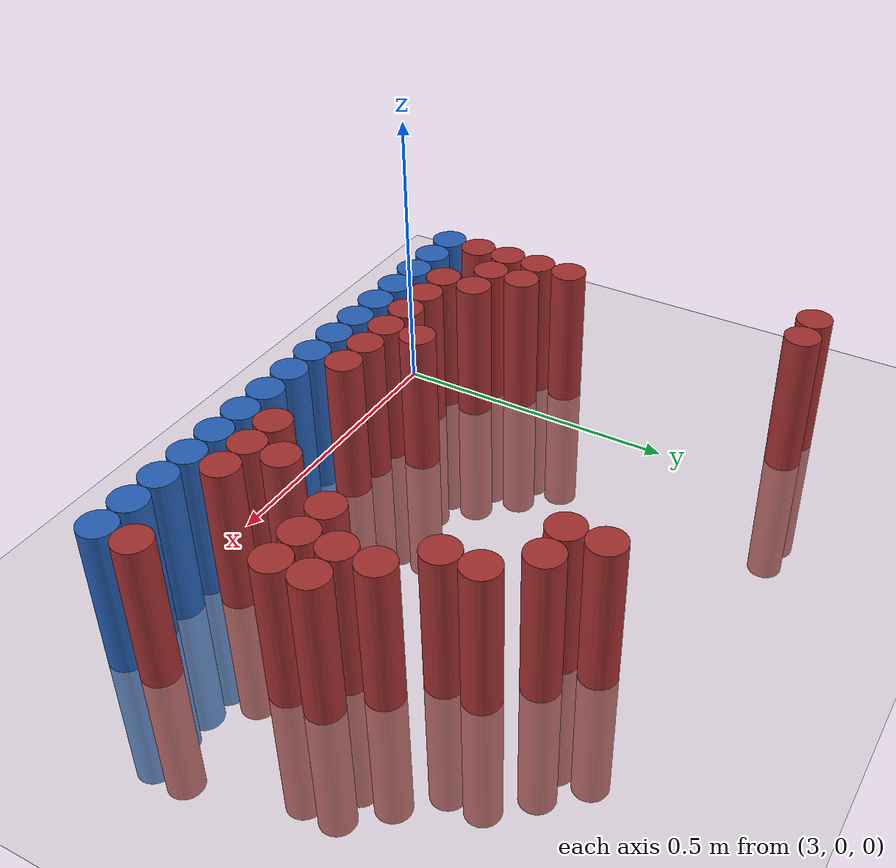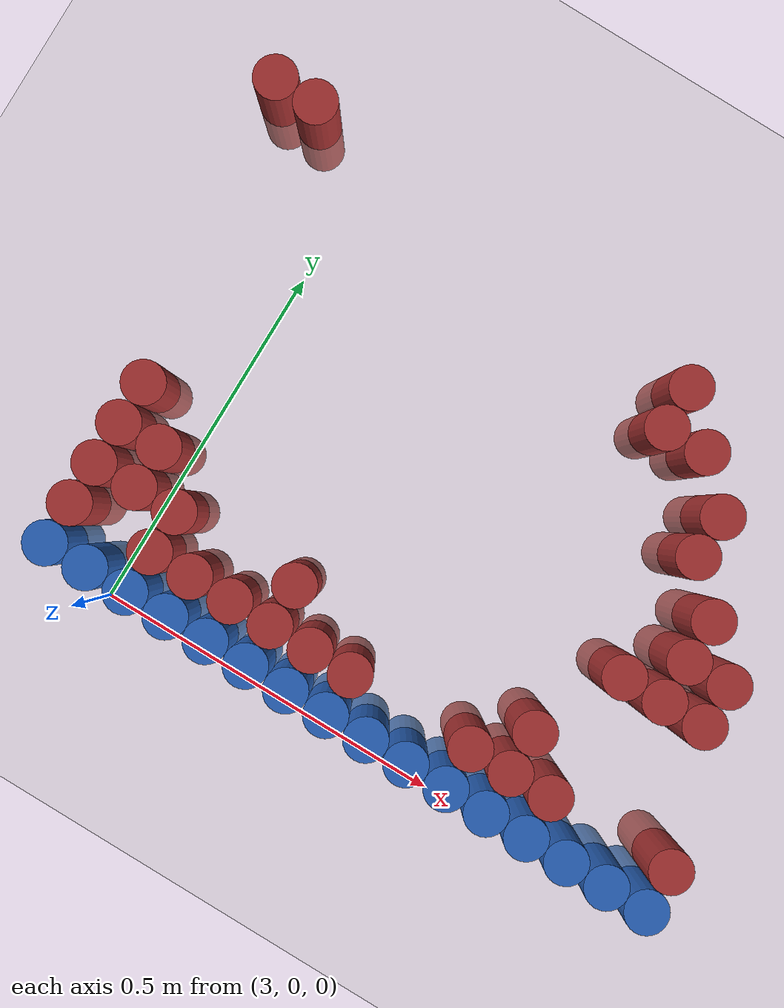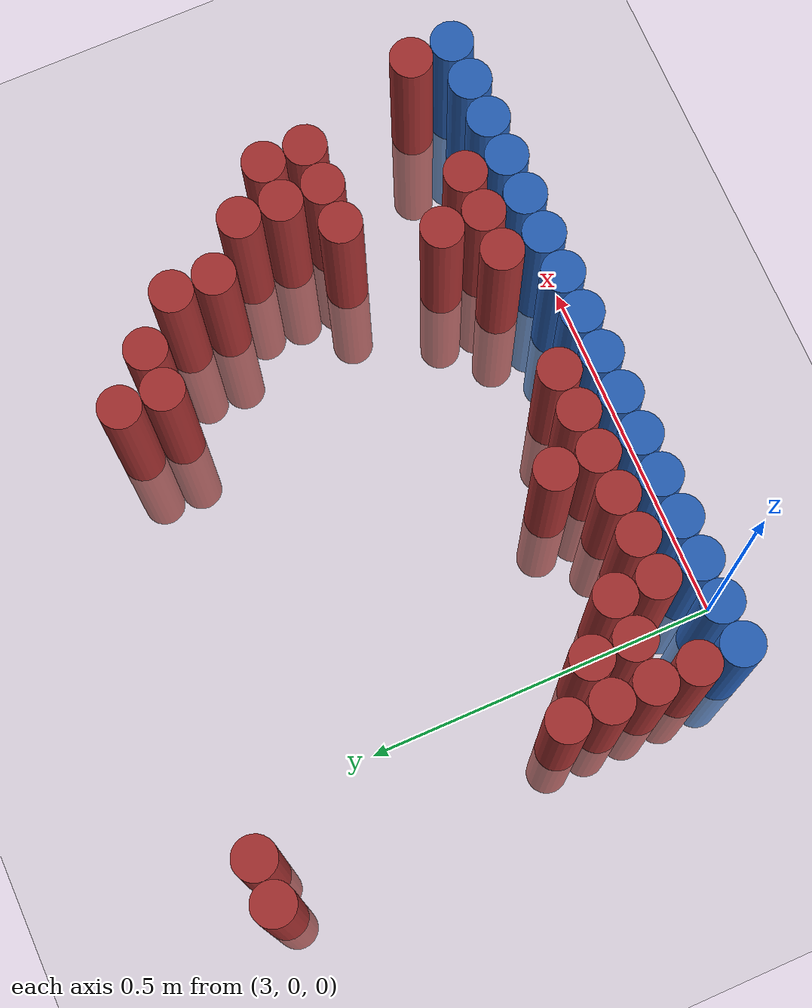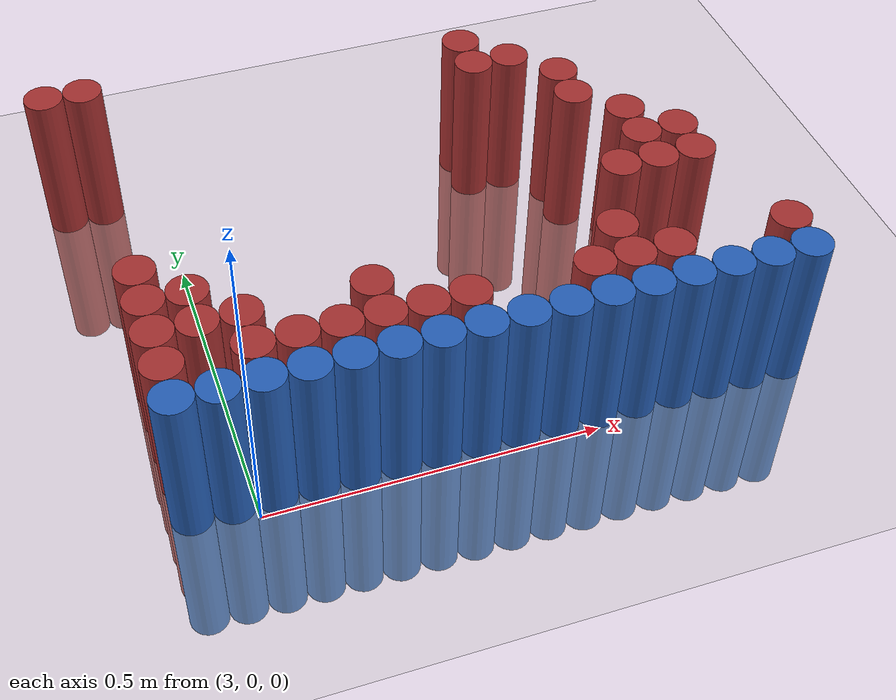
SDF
<sdf version="1.6">
 <world name="default">
  <model name="ground_plane">
   <static>1</static>
   <link name="link">
    <collision name="collision">
     <geometry><plane><normal>0 0 1</normal><size>100 100</size></plane></geometry>
     <surface><friction><ode><mu>100</mu><mu2>50</mu2></ode></friction></surface>
    </collision>
    <visual name="visual">
     <cast_shadows>0</cast_shadows>
     <geometry><plane><normal>0 0 1</normal><size>100 100</size></plane></geometry>
     <material>
      <script><uri>file://media/materials/scripts/gazebo.material</uri><name>Gazebo/Grey</name></script>
     </material>
    </visual>
   </link>
  </model>
  <model name="unit_cylinder_214">
   <static>1</static>
   <pose>2.850000 0.690000 0.000000 0.000000 0.000000 0.000000</pose>
   <link name="link">
    <inertial>
     <mass>1</mass>
     <inertia><ixx>0.145833</ixx><ixy>0</ixy><ixz>0</ixz><iyy>0.145833</iyy><iyz>0</iyz><izz>0.125</izz></inertia>
    </inertial>
    <collision name="collision">
     <geometry><cylinder><radius>0.030000</radius><length>0.5</length></cylinder></geometry>
    </collision>
    <visual name="visual">
     <geometry><cylinder><radius>0.030000</radius><length>0.5</length></cylinder></geometry>
     <material>
      <ambient>0.648000 0.192000 0.192000 1</ambient>
      <diffuse>0.648000 0.192000 0.192000 1</diffuse>
     </material>
     <material>
      <script><name>Gazebo/Grey</name><uri>file://media/materials/scripts/gazebo.material</uri></script>
     </material>
    </visual>
   </link>
  </model>
  <model name="unit_cylinder_215">
   <static>1</static>
   <pose>2.910000 0.690000 0.000000 0.000000 0.000000 0.000000</pose>
   <link name="link">
    <inertial>
     <mass>1</mass>
     <inertia><ixx>0.145833</ixx><ixy>0</ixy><ixz>0</ixz><iyy>0.145833</iyy><iyz>0</iyz><izz>0.125</izz></inertia>
    </inertial>
    <collision name="collision">
     <geometry><cylinder><radius>0.030000</radius><length>0.5</length></cylinder></geometry>
    </collision>
    <visual name="visual">
     <geometry><cylinder><radius>0.030000</radius><length>0.5</length></cylinder></geometry>
     <material>
      <ambient>0.648000 0.192000 0.192000 1</ambient>
      <diffuse>0.648000 0.192000 0.192000 1</diffuse>
     </material>
     <material>
      <script><name>Gazebo/Grey</name><uri>file://media/materials/scripts/gazebo.material</uri></script>
     </material>
    </visual>
   </link>
  </model>
  <model name="unit_cylinder_221">
   <static>1</static>
   <pose>3.510000 0.630000 0.000000 0.000000 0.000000 0.000000</pose>
   <link name="link">
    <inertial>
     <mass>1</mass>
     <inertia><ixx>0.145833</ixx><ixy>0</ixy><ixz>0</ixz><iyy>0.145833</iyy><iyz>0</iyz><izz>0.125</izz></inertia>
    </inertial>
    <collision name="collision">
     <geometry><cylinder><radius>0.030000</radius><length>0.5</length></cylinder></geometry>
    </collision>
    <visual name="visual">
     <geometry><cylinder><radius>0.030000</radius><length>0.5</length></cylinder></geometry>
     <material>
      <ambient>0.648000 0.192000 0.192000 1</ambient>
      <diffuse>0.648000 0.192000 0.192000 1</diffuse>
     </material>
     <material>
      <script><name>Gazebo/Grey</name><uri>file://media/materials/scripts/gazebo.material</uri></script>
     </material>
    </visual>
   </link>
  </model>
  <model name="unit_cylinder_226">
   <static>1</static>
   <pose>3.510000 0.570000 0.000000 0.000000 0.000000 0.000000</pose>
   <link name="link">
    <inertial>
     <mass>1</mass>
     <inertia><ixx>0.145833</ixx><ixy>0</ixy><ixz>0</ixz><iyy>0.145833</iyy><iyz>0</iyz><izz>0.125</izz></inertia>
    </inertial>
    <collision name="collision">
     <geometry><cylinder><radius>0.030000</radius><length>0.5</length></cylinder></geometry>
    </collision>
    <visual name="visual">
     <geometry><cylinder><radius>0.030000</radius><length>0.5</length></cylinder></geometry>
     <material>
      <ambient>0.648000 0.192000 0.192000 1</ambient>
      <diffuse>0.648000 0.192000 0.192000 1</diffuse>
     </material>
     <material>
      <script><name>Gazebo/Grey</name><uri>file://media/materials/scripts/gazebo.material</uri></script>
     </material>
    </visual>
   </link>
  </model>
  <model name="unit_cylinder_227">
   <static>1</static>
   <pose>3.570000 0.570000 0.000000 0.000000 0.000000 0.000000</pose>
   <link name="link">
    <inertial>
     <mass>1</mass>
     <inertia><ixx>0.145833</ixx><ixy>0</ixy><ixz>0</ixz><iyy>0.145833</iyy><iyz>0</iyz><izz>0.125</izz></inertia>
    </inertial>
    <collision name="collision">
     <geometry><cylinder><radius>0.030000</radius><length>0.5</length></cylinder></geometry>
    </collision>
    <visual name="visual">
     <geometry><cylinder><radius>0.030000</radius><length>0.5</length></cylinder></geometry>
     <material>
      <ambient>0.648000 0.192000 0.192000 1</ambient>
      <diffuse>0.648000 0.192000 0.192000 1</diffuse>
     </material>
     <material>
      <script><name>Gazebo/Grey</name><uri>file://media/materials/scripts/gazebo.material</uri></script>
     </material>
    </visual>
   </link>
  </model>
  <model name="unit_cylinder_232">
   <static>1</static>
   <pose>3.630000 0.510000 0.000000 0.000000 0.000000 0.000000</pose>
   <link name="link">
    <inertial>
     <mass>1</mass>
     <inertia><ixx>0.145833</ixx><ixy>0</ixy><ixz>0</ixz><iyy>0.145833</iyy><iyz>0</iyz><izz>0.125</izz></inertia>
    </inertial>
    <collision name="collision">
     <geometry><cylinder><radius>0.030000</radius><length>0.5</length></cylinder></geometry>
    </collision>
    <visual name="visual">
     <geometry><cylinder><radius>0.030000</radius><length>0.5</length></cylinder></geometry>
     <material>
      <ambient>0.648000 0.192000 0.192000 1</ambient>
      <diffuse>0.648000 0.192000 0.192000 1</diffuse>
     </material>
     <material>
      <script><name>Gazebo/Grey</name><uri>file://media/materials/scripts/gazebo.material</uri></script>
     </material>
    </visual>
   </link>
  </model>
  <model name="unit_cylinder_241">
   <static>1</static>
   <pose>3.630000 0.450000 0.000000 0.000000 0.000000 0.000000</pose>
   <link name="link">
    <inertial>
     <mass>1</mass>
     <inertia><ixx>0.145833</ixx><ixy>0</ixy><ixz>0</ixz><iyy>0.145833</iyy><iyz>0</iyz><izz>0.125</izz></inertia>
    </inertial>
    <collision name="collision">
     <geometry><cylinder><radius>0.030000</radius><length>0.5</length></cylinder></geometry>
    </collision>
    <visual name="visual">
     <geometry><cylinder><radius>0.030000</radius><length>0.5</length></cylinder></geometry>
     <material>
      <ambient>0.648000 0.192000 0.192000 1</ambient>
      <diffuse>0.648000 0.192000 0.192000 1</diffuse>
     </material>
     <material>
      <script><name>Gazebo/Grey</name><uri>file://media/materials/scripts/gazebo.material</uri></script>
     </material>
    </visual>
   </link>
  </model>
  <model name="unit_cylinder_247">
   <static>1</static>
   <pose>3.690000 0.390000 0.000000 0.000000 0.000000 0.000000</pose>
   <link name="link">
    <inertial>
     <mass>1</mass>
     <inertia><ixx>0.145833</ixx><ixy>0</ixy><ixz>0</ixz><iyy>0.145833</iyy><iyz>0</iyz><izz>0.125</izz></inertia>
    </inertial>
    <collision name="collision">
     <geometry><cylinder><radius>0.030000</radius><length>0.5</length></cylinder></geometry>
    </collision>
    <visual name="visual">
     <geometry><cylinder><radius>0.030000</radius><length>0.5</length></cylinder></geometry>
     <material>
      <ambient>0.648000 0.192000 0.192000 1</ambient>
      <diffuse>0.648000 0.192000 0.192000 1</diffuse>
     </material>
     <material>
      <script><name>Gazebo/Grey</name><uri>file://media/materials/scripts/gazebo.material</uri></script>
     </material>
    </visual>
   </link>
  </model>
  <model name="unit_cylinder_255">
   <static>1</static>
   <pose>3.690000 0.330000 0.000000 0.000000 0.000000 0.000000</pose>
   <link name="link">
    <inertial>
     <mass>1</mass>
     <inertia><ixx>0.145833</ixx><ixy>0</ixy><ixz>0</ixz><iyy>0.145833</iyy><iyz>0</iyz><izz>0.125</izz></inertia>
    </inertial>
    <collision name="collision">
     <geometry><cylinder><radius>0.030000</radius><length>0.5</length></cylinder></geometry>
    </collision>
    <visual name="visual">
     <geometry><cylinder><radius>0.030000</radius><length>0.5</length></cylinder></geometry>
     <material>
      <ambient>0.648000 0.192000 0.192000 1</ambient>
      <diffuse>0.648000 0.192000 0.192000 1</diffuse>
     </material>
     <material>
      <script><name>Gazebo/Grey</name><uri>file://media/materials/scripts/gazebo.material</uri></script>
     </material>
    </visual>
   </link>
  </model>
  <model name="unit_cylinder_256">
   <static>1</static>
   <pose>3.750000 0.330000 0.000000 0.000000 0.000000 0.000000</pose>
   <link name="link">
    <inertial>
     <mass>1</mass>
     <inertia><ixx>0.145833</ixx><ixy>0</ixy><ixz>0</ixz><iyy>0.145833</iyy><iyz>0</iyz><izz>0.125</izz></inertia>
    </inertial>
    <collision name="collision">
     <geometry><cylinder><radius>0.030000</radius><length>0.5</length></cylinder></geometry>
    </collision>
    <visual name="visual">
     <geometry><cylinder><radius>0.030000</radius><length>0.5</length></cylinder></geometry>
     <material>
      <ambient>0.648000 0.192000 0.192000 1</ambient>
      <diffuse>0.648000 0.192000 0.192000 1</diffuse>
     </material>
     <material>
      <script><name>Gazebo/Grey</name><uri>file://media/materials/scripts/gazebo.material</uri></script>
     </material>
    </visual>
   </link>
  </model>
  <model name="unit_cylinder_263">
   <static>1</static>
   <pose>2.910000 0.270000 0.000000 0.000000 0.000000 0.000000</pose>
   <link name="link">
    <inertial>
     <mass>1</mass>
     <inertia><ixx>0.145833</ixx><ixy>0</ixy><ixz>0</ixz><iyy>0.145833</iyy><iyz>0</iyz><izz>0.125</izz></inertia>
    </inertial>
    <collision name="collision">
     <geometry><cylinder><radius>0.030000</radius><length>0.5</length></cylinder></geometry>
    </collision>
    <visual name="visual">
     <geometry><cylinder><radius>0.030000</radius><length>0.5</length></cylinder></geometry>
     <material>
      <ambient>0.648000 0.192000 0.192000 1</ambient>
      <diffuse>0.648000 0.192000 0.192000 1</diffuse>
     </material>
     <material>
      <script><name>Gazebo/Grey</name><uri>file://media/materials/scripts/gazebo.material</uri></script>
     </material>
    </visual>
   </link>
  </model>
  <model name="unit_cylinder_264">
   <static>1</static>
   <pose>3.630000 0.270000 0.000000 0.000000 0.000000 0.000000</pose>
   <link name="link">
    <inertial>
     <mass>1</mass>
     <inertia><ixx>0.145833</ixx><ixy>0</ixy><ixz>0</ixz><iyy>0.145833</iyy><iyz>0</iyz><izz>0.125</izz></inertia>
    </inertial>
    <collision name="collision">
     <geometry><cylinder><radius>0.030000</radius><length>0.5</length></cylinder></geometry>
    </collision>
    <visual name="visual">
     <geometry><cylinder><radius>0.030000</radius><length>0.5</length></cylinder></geometry>
     <material>
      <ambient>0.648000 0.192000 0.192000 1</ambient>
      <diffuse>0.648000 0.192000 0.192000 1</diffuse>
     </material>
     <material>
      <script><name>Gazebo/Grey</name><uri>file://media/materials/scripts/gazebo.material</uri></script>
     </material>
    </visual>
   </link>
  </model>
  <model name="unit_cylinder_265">
   <static>1</static>
   <pose>3.690000 0.270000 0.000000 0.000000 0.000000 0.000000</pose>
   <link name="link">
    <inertial>
     <mass>1</mass>
     <inertia><ixx>0.145833</ixx><ixy>0</ixy><ixz>0</ixz><iyy>0.145833</iyy><iyz>0</iyz><izz>0.125</izz></inertia>
    </inertial>
    <collision name="collision">
     <geometry><cylinder><radius>0.030000</radius><length>0.5</length></cylinder></geometry>
    </collision>
    <visual name="visual">
     <geometry><cylinder><radius>0.030000</radius><length>0.5</length></cylinder></geometry>
     <material>
      <ambient>0.648000 0.192000 0.192000 1</ambient>
      <diffuse>0.648000 0.192000 0.192000 1</diffuse>
     </material>
     <material>
      <script><name>Gazebo/Grey</name><uri>file://media/materials/scripts/gazebo.material</uri></script>
     </material>
    </visual>
   </link>
  </model>
  <model name="unit_cylinder_266">
   <static>1</static>
   <pose>3.750000 0.270000 0.000000 0.000000 0.000000 0.000000</pose>
   <link name="link">
    <inertial>
     <mass>1</mass>
     <inertia><ixx>0.145833</ixx><ixy>0</ixy><ixz>0</ixz><iyy>0.145833</iyy><iyz>0</iyz><izz>0.125</izz></inertia>
    </inertial>
    <collision name="collision">
     <geometry><cylinder><radius>0.030000</radius><length>0.5</length></cylinder></geometry>
    </collision>
    <visual name="visual">
     <geometry><cylinder><radius>0.030000</radius><length>0.5</length></cylinder></geometry>
     <material>
      <ambient>0.648000 0.192000 0.192000 1</ambient>
      <diffuse>0.648000 0.192000 0.192000 1</diffuse>
     </material>
     <material>
      <script><name>Gazebo/Grey</name><uri>file://media/materials/scripts/gazebo.material</uri></script>
     </material>
    </visual>
   </link>
  </model>
  <model name="unit_cylinder_272">
   <static>1</static>
   <pose>2.910000 0.210000 0.000000 0.000000 0.000000 0.000000</pose>
   <link name="link">
    <inertial>
     <mass>1</mass>
     <inertia><ixx>0.145833</ixx><ixy>0</ixy><ixz>0</ixz><iyy>0.145833</iyy><iyz>0</iyz><izz>0.125</izz></inertia>
    </inertial>
    <collision name="collision">
     <geometry><cylinder><radius>0.030000</radius><length>0.5</length></cylinder></geometry>
    </collision>
    <visual name="visual">
     <geometry><cylinder><radius>0.030000</radius><length>0.5</length></cylinder></geometry>
     <material>
      <ambient>0.648000 0.192000 0.192000 1</ambient>
      <diffuse>0.648000 0.192000 0.192000 1</diffuse>
     </material>
     <material>
      <script><name>Gazebo/Grey</name><uri>file://media/materials/scripts/gazebo.material</uri></script>
     </material>
    </visual>
   </link>
  </model>
  <model name="unit_cylinder_273">
   <static>1</static>
   <pose>2.970000 0.210000 0.000000 0.000000 0.000000 0.000000</pose>
   <link name="link">
    <inertial>
     <mass>1</mass>
     <inertia><ixx>0.145833</ixx><ixy>0</ixy><ixz>0</ixz><iyy>0.145833</iyy><iyz>0</iyz><izz>0.125</izz></inertia>
    </inertial>
    <collision name="collision">
     <geometry><cylinder><radius>0.030000</radius><length>0.5</length></cylinder></geometry>
    </collision>
    <visual name="visual">
     <geometry><cylinder><radius>0.030000</radius><length>0.5</length></cylinder></geometry>
     <material>
      <ambient>0.648000 0.192000 0.192000 1</ambient>
      <diffuse>0.648000 0.192000 0.192000 1</diffuse>
     </material>
     <material>
      <script><name>Gazebo/Grey</name><uri>file://media/materials/scripts/gazebo.material</uri></script>
     </material>
    </visual>
   </link>
  </model>
  <model name="unit_cylinder_278">
   <static>1</static>
   <pose>2.910000 0.150000 0.000000 0.000000 0.000000 0.000000</pose>
   <link name="link">
    <inertial>
     <mass>1</mass>
     <inertia><ixx>0.145833</ixx><ixy>0</ixy><ixz>0</ixz><iyy>0.145833</iyy><iyz>0</iyz><izz>0.125</izz></inertia>
    </inertial>
    <collision name="collision">
     <geometry><cylinder><radius>0.030000</radius><length>0.5</length></cylinder></geometry>
    </collision>
    <visual name="visual">
     <geometry><cylinder><radius>0.030000</radius><length>0.5</length></cylinder></geometry>
     <material>
      <ambient>0.648000 0.192000 0.192000 1</ambient>
      <diffuse>0.648000 0.192000 0.192000 1</diffuse>
     </material>
     <material>
      <script><name>Gazebo/Grey</name><uri>file://media/materials/scripts/gazebo.material</uri></script>
     </material>
    </visual>
   </link>
  </model>
  <model name="unit_cylinder_279">
   <static>1</static>
   <pose>2.970000 0.150000 0.000000 0.000000 0.000000 0.000000</pose>
   <link name="link">
    <inertial>
     <mass>1</mass>
     <inertia><ixx>0.145833</ixx><ixy>0</ixy><ixz>0</ixz><iyy>0.145833</iyy><iyz>0</iyz><izz>0.125</izz></inertia>
    </inertial>
    <collision name="collision">
     <geometry><cylinder><radius>0.030000</radius><length>0.5</length></cylinder></geometry>
    </collision>
    <visual name="visual">
     <geometry><cylinder><radius>0.030000</radius><length>0.5</length></cylinder></geometry>
     <material>
      <ambient>0.648000 0.192000 0.192000 1</ambient>
      <diffuse>0.648000 0.192000 0.192000 1</diffuse>
     </material>
     <material>
      <script><name>Gazebo/Grey</name><uri>file://media/materials/scripts/gazebo.material</uri></script>
     </material>
    </visual>
   </link>
  </model>
  <model name="unit_cylinder_280">
   <static>1</static>
   <pose>3.030000 0.150000 0.000000 0.000000 0.000000 0.000000</pose>
   <link name="link">
    <inertial>
     <mass>1</mass>
     <inertia><ixx>0.145833</ixx><ixy>0</ixy><ixz>0</ixz><iyy>0.145833</iyy><iyz>0</iyz><izz>0.125</izz></inertia>
    </inertial>
    <collision name="collision">
     <geometry><cylinder><radius>0.030000</radius><length>0.5</length></cylinder></geometry>
    </collision>
    <visual name="visual">
     <geometry><cylinder><radius>0.030000</radius><length>0.5</length></cylinder></geometry>
     <material>
      <ambient>0.648000 0.192000 0.192000 1</ambient>
      <diffuse>0.648000 0.192000 0.192000 1</diffuse>
     </material>
     <material>
      <script><name>Gazebo/Grey</name><uri>file://media/materials/scripts/gazebo.material</uri></script>
     </material>
    </visual>
   </link>
  </model>
  <model name="unit_cylinder_281">
   <static>1</static>
   <pose>3.210000 0.150000 0.000000 0.000000 0.000000 0.000000</pose>
   <link name="link">
    <inertial>
     <mass>1</mass>
     <inertia><ixx>0.145833</ixx><ixy>0</ixy><ixz>0</ixz><iyy>0.145833</iyy><iyz>0</iyz><izz>0.125</izz></inertia>
    </inertial>
    <collision name="collision">
     <geometry><cylinder><radius>0.030000</radius><length>0.5</length></cylinder></geometry>
    </collision>
    <visual name="visual">
     <geometry><cylinder><radius>0.030000</radius><length>0.5</length></cylinder></geometry>
     <material>
      <ambient>0.648000 0.192000 0.192000 1</ambient>
      <diffuse>0.648000 0.192000 0.192000 1</diffuse>
     </material>
     <material>
      <script><name>Gazebo/Grey</name><uri>file://media/materials/scripts/gazebo.material</uri></script>
     </material>
    </visual>
   </link>
  </model>
  <model name="unit_cylinder_282">
   <static>1</static>
   <pose>3.570000 0.150000 0.000000 0.000000 0.000000 0.000000</pose>
   <link name="link">
    <inertial>
     <mass>1</mass>
     <inertia><ixx>0.145833</ixx><ixy>0</ixy><ixz>0</ixz><iyy>0.145833</iyy><iyz>0</iyz><izz>0.125</izz></inertia>
    </inertial>
    <collision name="collision">
     <geometry><cylinder><radius>0.030000</radius><length>0.5</length></cylinder></geometry>
    </collision>
    <visual name="visual">
     <geometry><cylinder><radius>0.030000</radius><length>0.5</length></cylinder></geometry>
     <material>
      <ambient>0.648000 0.192000 0.192000 1</ambient>
      <diffuse>0.648000 0.192000 0.192000 1</diffuse>
     </material>
     <material>
      <script><name>Gazebo/Grey</name><uri>file://media/materials/scripts/gazebo.material</uri></script>
     </material>
    </visual>
   </link>
  </model>
  <model name="unit_cylinder_292">
   <static>1</static>
   <pose>2.910000 0.090000 0.000000 0.000000 0.000000 0.000000</pose>
   <link name="link">
    <inertial>
     <mass>1</mass>
     <inertia><ixx>0.145833</ixx><ixy>0</ixy><ixz>0</ixz><iyy>0.145833</iyy><iyz>0</iyz><izz>0.125</izz></inertia>
    </inertial>
    <collision name="collision">
     <geometry><cylinder><radius>0.030000</radius><length>0.5</length></cylinder></geometry>
    </collision>
    <visual name="visual">
     <geometry><cylinder><radius>0.030000</radius><length>0.5</length></cylinder></geometry>
     <material>
      <ambient>0.648000 0.192000 0.192000 1</ambient>
      <diffuse>0.648000 0.192000 0.192000 1</diffuse>
     </material>
     <material>
      <script><name>Gazebo/Grey</name><uri>file://media/materials/scripts/gazebo.material</uri></script>
     </material>
    </visual>
   </link>
  </model>
  <model name="unit_cylinder_293">
   <static>1</static>
   <pose>3.030000 0.090000 0.000000 0.000000 0.000000 0.000000</pose>
   <link name="link">
    <inertial>
     <mass>1</mass>
     <inertia><ixx>0.145833</ixx><ixy>0</ixy><ixz>0</ixz><iyy>0.145833</iyy><iyz>0</iyz><izz>0.125</izz></inertia>
    </inertial>
    <collision name="collision">
     <geometry><cylinder><radius>0.030000</radius><length>0.5</length></cylinder></geometry>
    </collision>
    <visual name="visual">
     <geometry><cylinder><radius>0.030000</radius><length>0.5</length></cylinder></geometry>
     <material>
      <ambient>0.648000 0.192000 0.192000 1</ambient>
      <diffuse>0.648000 0.192000 0.192000 1</diffuse>
     </material>
     <material>
      <script><name>Gazebo/Grey</name><uri>file://media/materials/scripts/gazebo.material</uri></script>
     </material>
    </visual>
   </link>
  </model>
  <model name="unit_cylinder_294">
   <static>1</static>
   <pose>3.090000 0.090000 0.000000 0.000000 0.000000 0.000000</pose>
   <link name="link">
    <inertial>
     <mass>1</mass>
     <inertia><ixx>0.145833</ixx><ixy>0</ixy><ixz>0</ixz><iyy>0.145833</iyy><iyz>0</iyz><izz>0.125</izz></inertia>
    </inertial>
    <collision name="collision">
     <geometry><cylinder><radius>0.030000</radius><length>0.5</length></cylinder></geometry>
    </collision>
    <visual name="visual">
     <geometry><cylinder><radius>0.030000</radius><length>0.5</length></cylinder></geometry>
     <material>
      <ambient>0.648000 0.192000 0.192000 1</ambient>
      <diffuse>0.648000 0.192000 0.192000 1</diffuse>
     </material>
     <material>
      <script><name>Gazebo/Grey</name><uri>file://media/materials/scripts/gazebo.material</uri></script>
     </material>
    </visual>
   </link>
  </model>
  <model name="unit_cylinder_295">
   <static>1</static>
   <pose>3.150000 0.090000 0.000000 0.000000 0.000000 0.000000</pose>
   <link name="link">
    <inertial>
     <mass>1</mass>
     <inertia><ixx>0.145833</ixx><ixy>0</ixy><ixz>0</ixz><iyy>0.145833</iyy><iyz>0</iyz><izz>0.125</izz></inertia>
    </inertial>
    <collision name="collision">
     <geometry><cylinder><radius>0.030000</radius><length>0.5</length></cylinder></geometry>
    </collision>
    <visual name="visual">
     <geometry><cylinder><radius>0.030000</radius><length>0.5</length></cylinder></geometry>
     <material>
      <ambient>0.648000 0.192000 0.192000 1</ambient>
      <diffuse>0.648000 0.192000 0.192000 1</diffuse>
     </material>
     <material>
      <script><name>Gazebo/Grey</name><uri>file://media/materials/scripts/gazebo.material</uri></script>
     </material>
    </visual>
   </link>
  </model>
  <model name="unit_cylinder_296">
   <static>1</static>
   <pose>3.210000 0.090000 0.000000 0.000000 0.000000 0.000000</pose>
   <link name="link">
    <inertial>
     <mass>1</mass>
     <inertia><ixx>0.145833</ixx><ixy>0</ixy><ixz>0</ixz><iyy>0.145833</iyy><iyz>0</iyz><izz>0.125</izz></inertia>
    </inertial>
    <collision name="collision">
     <geometry><cylinder><radius>0.030000</radius><length>0.5</length></cylinder></geometry>
    </collision>
    <visual name="visual">
     <geometry><cylinder><radius>0.030000</radius><length>0.5</length></cylinder></geometry>
     <material>
      <ambient>0.648000 0.192000 0.192000 1</ambient>
      <diffuse>0.648000 0.192000 0.192000 1</diffuse>
     </material>
     <material>
      <script><name>Gazebo/Grey</name><uri>file://media/materials/scripts/gazebo.material</uri></script>
     </material>
    </visual>
   </link>
  </model>
  <model name="unit_cylinder_297">
   <static>1</static>
   <pose>3.270000 0.090000 0.000000 0.000000 0.000000 0.000000</pose>
   <link name="link">
    <inertial>
     <mass>1</mass>
     <inertia><ixx>0.145833</ixx><ixy>0</ixy><ixz>0</ixz><iyy>0.145833</iyy><iyz>0</iyz><izz>0.125</izz></inertia>
    </inertial>
    <collision name="collision">
     <geometry><cylinder><radius>0.030000</radius><length>0.5</length></cylinder></geometry>
    </collision>
    <visual name="visual">
     <geometry><cylinder><radius>0.030000</radius><length>0.5</length></cylinder></geometry>
     <material>
      <ambient>0.648000 0.192000 0.192000 1</ambient>
      <diffuse>0.648000 0.192000 0.192000 1</diffuse>
     </material>
     <material>
      <script><name>Gazebo/Grey</name><uri>file://media/materials/scripts/gazebo.material</uri></script>
     </material>
    </visual>
   </link>
  </model>
  <model name="unit_cylinder_298">
   <static>1</static>
   <pose>3.330000 0.090000 0.000000 0.000000 0.000000 0.000000</pose>
   <link name="link">
    <inertial>
     <mass>1</mass>
     <inertia><ixx>0.145833</ixx><ixy>0</ixy><ixz>0</ixz><iyy>0.145833</iyy><iyz>0</iyz><izz>0.125</izz></inertia>
    </inertial>
    <collision name="collision">
     <geometry><cylinder><radius>0.030000</radius><length>0.5</length></cylinder></geometry>
    </collision>
    <visual name="visual">
     <geometry><cylinder><radius>0.030000</radius><length>0.5</length></cylinder></geometry>
     <material>
      <ambient>0.648000 0.192000 0.192000 1</ambient>
      <diffuse>0.648000 0.192000 0.192000 1</diffuse>
     </material>
     <material>
      <script><name>Gazebo/Grey</name><uri>file://media/materials/scripts/gazebo.material</uri></script>
     </material>
    </visual>
   </link>
  </model>
  <model name="unit_cylinder_299">
   <static>1</static>
   <pose>3.510000 0.090000 0.000000 0.000000 0.000000 0.000000</pose>
   <link name="link">
    <inertial>
     <mass>1</mass>
     <inertia><ixx>0.145833</ixx><ixy>0</ixy><ixz>0</ixz><iyy>0.145833</iyy><iyz>0</iyz><izz>0.125</izz></inertia>
    </inertial>
    <collision name="collision">
     <geometry><cylinder><radius>0.030000</radius><length>0.5</length></cylinder></geometry>
    </collision>
    <visual name="visual">
     <geometry><cylinder><radius>0.030000</radius><length>0.5</length></cylinder></geometry>
     <material>
      <ambient>0.648000 0.192000 0.192000 1</ambient>
      <diffuse>0.648000 0.192000 0.192000 1</diffuse>
     </material>
     <material>
      <script><name>Gazebo/Grey</name><uri>file://media/materials/scripts/gazebo.material</uri></script>
     </material>
    </visual>
   </link>
  </model>
  <model name="unit_cylinder_300">
   <static>1</static>
   <pose>3.570000 0.090000 0.000000 0.000000 0.000000 0.000000</pose>
   <link name="link">
    <inertial>
     <mass>1</mass>
     <inertia><ixx>0.145833</ixx><ixy>0</ixy><ixz>0</ixz><iyy>0.145833</iyy><iyz>0</iyz><izz>0.125</izz></inertia>
    </inertial>
    <collision name="collision">
     <geometry><cylinder><radius>0.030000</radius><length>0.5</length></cylinder></geometry>
    </collision>
    <visual name="visual">
     <geometry><cylinder><radius>0.030000</radius><length>0.5</length></cylinder></geometry>
     <material>
      <ambient>0.648000 0.192000 0.192000 1</ambient>
      <diffuse>0.648000 0.192000 0.192000 1</diffuse>
     </material>
     <material>
      <script><name>Gazebo/Grey</name><uri>file://media/materials/scripts/gazebo.material</uri></script>
     </material>
    </visual>
   </link>
  </model>
  <model name="unit_cylinder_301">
   <static>1</static>
   <pose>3.630000 0.090000 0.000000 0.000000 0.000000 0.000000</pose>
   <link name="link">
    <inertial>
     <mass>1</mass>
     <inertia><ixx>0.145833</ixx><ixy>0</ixy><ixz>0</ixz><iyy>0.145833</iyy><iyz>0</iyz><izz>0.125</izz></inertia>
    </inertial>
    <collision name="collision">
     <geometry><cylinder><radius>0.030000</radius><length>0.5</length></cylinder></geometry>
    </collision>
    <visual name="visual">
     <geometry><cylinder><radius>0.030000</radius><length>0.5</length></cylinder></geometry>
     <material>
      <ambient>0.648000 0.192000 0.192000 1</ambient>
      <diffuse>0.648000 0.192000 0.192000 1</diffuse>
     </material>
     <material>
      <script><name>Gazebo/Grey</name><uri>file://media/materials/scripts/gazebo.material</uri></script>
     </material>
    </visual>
   </link>
  </model>
  <model name="unit_cylinder_302">
   <static>1</static>
   <pose>3.810000 0.090000 0.000000 0.000000 0.000000 0.000000</pose>
   <link name="link">
    <inertial>
     <mass>1</mass>
     <inertia><ixx>0.145833</ixx><ixy>0</ixy><ixz>0</ixz><iyy>0.145833</iyy><iyz>0</iyz><izz>0.125</izz></inertia>
    </inertial>
    <collision name="collision">
     <geometry><cylinder><radius>0.030000</radius><length>0.5</length></cylinder></geometry>
    </collision>
    <visual name="visual">
     <geometry><cylinder><radius>0.030000</radius><length>0.5</length></cylinder></geometry>
     <material>
      <ambient>0.648000 0.192000 0.192000 1</ambient>
      <diffuse>0.648000 0.192000 0.192000 1</diffuse>
     </material>
     <material>
      <script><name>Gazebo/Grey</name><uri>file://media/materials/scripts/gazebo.material</uri></script>
     </material>
    </visual>
   </link>
  </model>
  <model name="unit_cylinder_317">
   <static>1</static>
   <pose>2.910000 0.030000 0.000000 0.000000 0.000000 0.000000</pose>
   <link name="link">
    <inertial>
     <mass>1</mass>
     <inertia><ixx>0.145833</ixx><ixy>0</ixy><ixz>0</ixz><iyy>0.145833</iyy><iyz>0</iyz><izz>0.125</izz></inertia>
    </inertial>
    <collision name="collision">
     <geometry><cylinder><radius>0.030000</radius><length>0.5</length></cylinder></geometry>
    </collision>
    <visual name="visual">
     <geometry><cylinder><radius>0.030000</radius><length>0.5</length></cylinder></geometry>
     <material>
      <ambient>0.152000 0.379000 0.720000 1</ambient>
      <diffuse>0.152000 0.379000 0.720000 1</diffuse>
     </material>
     <material>
      <script><name>Gazebo/Grey</name><uri>file://media/materials/scripts/gazebo.material</uri></script>
     </material>
    </visual>
   </link>
  </model>
  <model name="unit_cylinder_318">
   <static>1</static>
   <pose>2.970000 0.030000 0.000000 0.000000 0.000000 0.000000</pose>
   <link name="link">
    <inertial>
     <mass>1</mass>
     <inertia><ixx>0.145833</ixx><ixy>0</ixy><ixz>0</ixz><iyy>0.145833</iyy><iyz>0</iyz><izz>0.125</izz></inertia>
    </inertial>
    <collision name="collision">
     <geometry><cylinder><radius>0.030000</radius><length>0.5</length></cylinder></geometry>
    </collision>
    <visual name="visual">
     <geometry><cylinder><radius>0.030000</radius><length>0.5</length></cylinder></geometry>
     <material>
      <ambient>0.152000 0.379000 0.720000 1</ambient>
      <diffuse>0.152000 0.379000 0.720000 1</diffuse>
     </material>
     <material>
      <script><name>Gazebo/Grey</name><uri>file://media/materials/scripts/gazebo.material</uri></script>
     </material>
    </visual>
   </link>
  </model>
  <model name="unit_cylinder_319">
   <static>1</static>
   <pose>3.030000 0.030000 0.000000 0.000000 0.000000 0.000000</pose>
   <link name="link">
    <inertial>
     <mass>1</mass>
     <inertia><ixx>0.145833</ixx><ixy>0</ixy><ixz>0</ixz><iyy>0.145833</iyy><iyz>0</iyz><izz>0.125</izz></inertia>
    </inertial>
    <collision name="collision">
     <geometry><cylinder><radius>0.030000</radius><length>0.5</length></cylinder></geometry>
    </collision>
    <visual name="visual">
     <geometry><cylinder><radius>0.030000</radius><length>0.5</length></cylinder></geometry>
     <material>
      <ambient>0.152000 0.379000 0.720000 1</ambient>
      <diffuse>0.152000 0.379000 0.720000 1</diffuse>
     </material>
     <material>
      <script><name>Gazebo/Grey</name><uri>file://media/materials/scripts/gazebo.material</uri></script>
     </material>
    </visual>
   </link>
  </model>
  <model name="unit_cylinder_320">
   <static>1</static>
   <pose>3.090000 0.030000 0.000000 0.000000 0.000000 0.000000</pose>
   <link name="link">
    <inertial>
     <mass>1</mass>
     <inertia><ixx>0.145833</ixx><ixy>0</ixy><ixz>0</ixz><iyy>0.145833</iyy><iyz>0</iyz><izz>0.125</izz></inertia>
    </inertial>
    <collision name="collision">
     <geometry><cylinder><radius>0.030000</radius><length>0.5</length></cylinder></geometry>
    </collision>
    <visual name="visual">
     <geometry><cylinder><radius>0.030000</radius><length>0.5</length></cylinder></geometry>
     <material>
      <ambient>0.152000 0.379000 0.720000 1</ambient>
      <diffuse>0.152000 0.379000 0.720000 1</diffuse>
     </material>
     <material>
      <script><name>Gazebo/Grey</name><uri>file://media/materials/scripts/gazebo.material</uri></script>
     </material>
    </visual>
   </link>
  </model>
  <model name="unit_cylinder_321">
   <static>1</static>
   <pose>3.150000 0.030000 0.000000 0.000000 0.000000 0.000000</pose>
   <link name="link">
    <inertial>
     <mass>1</mass>
     <inertia><ixx>0.145833</ixx><ixy>0</ixy><ixz>0</ixz><iyy>0.145833</iyy><iyz>0</iyz><izz>0.125</izz></inertia>
    </inertial>
    <collision name="collision">
     <geometry><cylinder><radius>0.030000</radius><length>0.5</length></cylinder></geometry>
    </collision>
    <visual name="visual">
     <geometry><cylinder><radius>0.030000</radius><length>0.5</length></cylinder></geometry>
     <material>
      <ambient>0.152000 0.379000 0.720000 1</ambient>
      <diffuse>0.152000 0.379000 0.720000 1</diffuse>
     </material>
     <material>
      <script><name>Gazebo/Grey</name><uri>file://media/materials/scripts/gazebo.material</uri></script>
     </material>
    </visual>
   </link>
  </model>
  <model name="unit_cylinder_322">
   <static>1</static>
   <pose>3.210000 0.030000 0.000000 0.000000 0.000000 0.000000</pose>
   <link name="link">
    <inertial>
     <mass>1</mass>
     <inertia><ixx>0.145833</ixx><ixy>0</ixy><ixz>0</ixz><iyy>0.145833</iyy><iyz>0</iyz><izz>0.125</izz></inertia>
    </inertial>
    <collision name="collision">
     <geometry><cylinder><radius>0.030000</radius><length>0.5</length></cylinder></geometry>
    </collision>
    <visual name="visual">
     <geometry><cylinder><radius>0.030000</radius><length>0.5</length></cylinder></geometry>
     <material>
      <ambient>0.152000 0.379000 0.720000 1</ambient>
      <diffuse>0.152000 0.379000 0.720000 1</diffuse>
     </material>
     <material>
      <script><name>Gazebo/Grey</name><uri>file://media/materials/scripts/gazebo.material</uri></script>
     </material>
    </visual>
   </link>
  </model>
  <model name="unit_cylinder_323">
   <static>1</static>
   <pose>3.270000 0.030000 0.000000 0.000000 0.000000 0.000000</pose>
   <link name="link">
    <inertial>
     <mass>1</mass>
     <inertia><ixx>0.145833</ixx><ixy>0</ixy><ixz>0</ixz><iyy>0.145833</iyy><iyz>0</iyz><izz>0.125</izz></inertia>
    </inertial>
    <collision name="collision">
     <geometry><cylinder><radius>0.030000</radius><length>0.5</length></cylinder></geometry>
    </collision>
    <visual name="visual">
     <geometry><cylinder><radius>0.030000</radius><length>0.5</length></cylinder></geometry>
     <material>
      <ambient>0.152000 0.379000 0.720000 1</ambient>
      <diffuse>0.152000 0.379000 0.720000 1</diffuse>
     </material>
     <material>
      <script><name>Gazebo/Grey</name><uri>file://media/materials/scripts/gazebo.material</uri></script>
     </material>
    </visual>
   </link>
  </model>
  <model name="unit_cylinder_324">
   <static>1</static>
   <pose>3.330000 0.030000 0.000000 0.000000 0.000000 0.000000</pose>
   <link name="link">
    <inertial>
     <mass>1</mass>
     <inertia><ixx>0.145833</ixx><ixy>0</ixy><ixz>0</ixz><iyy>0.145833</iyy><iyz>0</iyz><izz>0.125</izz></inertia>
    </inertial>
    <collision name="collision">
     <geometry><cylinder><radius>0.030000</radius><length>0.5</length></cylinder></geometry>
    </collision>
    <visual name="visual">
     <geometry><cylinder><radius>0.030000</radius><length>0.5</length></cylinder></geometry>
     <material>
      <ambient>0.152000 0.379000 0.720000 1</ambient>
      <diffuse>0.152000 0.379000 0.720000 1</diffuse>
     </material>
     <material>
      <script><name>Gazebo/Grey</name><uri>file://media/materials/scripts/gazebo.material</uri></script>
     </material>
    </visual>
   </link>
  </model>
  <model name="unit_cylinder_325">
   <static>1</static>
   <pose>3.390000 0.030000 0.000000 0.000000 0.000000 0.000000</pose>
   <link name="link">
    <inertial>
     <mass>1</mass>
     <inertia><ixx>0.145833</ixx><ixy>0</ixy><ixz>0</ixz><iyy>0.145833</iyy><iyz>0</iyz><izz>0.125</izz></inertia>
    </inertial>
    <collision name="collision">
     <geometry><cylinder><radius>0.030000</radius><length>0.5</length></cylinder></geometry>
    </collision>
    <visual name="visual">
     <geometry><cylinder><radius>0.030000</radius><length>0.5</length></cylinder></geometry>
     <material>
      <ambient>0.152000 0.379000 0.720000 1</ambient>
      <diffuse>0.152000 0.379000 0.720000 1</diffuse>
     </material>
     <material>
      <script><name>Gazebo/Grey</name><uri>file://media/materials/scripts/gazebo.material</uri></script>
     </material>
    </visual>
   </link>
  </model>
  <model name="unit_cylinder_326">
   <static>1</static>
   <pose>3.450000 0.030000 0.000000 0.000000 0.000000 0.000000</pose>
   <link name="link">
    <inertial>
     <mass>1</mass>
     <inertia><ixx>0.145833</ixx><ixy>0</ixy><ixz>0</ixz><iyy>0.145833</iyy><iyz>0</iyz><izz>0.125</izz></inertia>
    </inertial>
    <collision name="collision">
     <geometry><cylinder><radius>0.030000</radius><length>0.5</length></cylinder></geometry>
    </collision>
    <visual name="visual">
     <geometry><cylinder><radius>0.030000</radius><length>0.5</length></cylinder></geometry>
     <material>
      <ambient>0.152000 0.379000 0.720000 1</ambient>
      <diffuse>0.152000 0.379000 0.720000 1</diffuse>
     </material>
     <material>
      <script><name>Gazebo/Grey</name><uri>file://media/materials/scripts/gazebo.material</uri></script>
     </material>
    </visual>
   </link>
  </model>
  <model name="unit_cylinder_327">
   <static>1</static>
   <pose>3.510000 0.030000 0.000000 0.000000 0.000000 0.000000</pose>
   <link name="link">
    <inertial>
     <mass>1</mass>
     <inertia><ixx>0.145833</ixx><ixy>0</ixy><ixz>0</ixz><iyy>0.145833</iyy><iyz>0</iyz><izz>0.125</izz></inertia>
    </inertial>
    <collision name="collision">
     <geometry><cylinder><radius>0.030000</radius><length>0.5</length></cylinder></geometry>
    </collision>
    <visual name="visual">
     <geometry><cylinder><radius>0.030000</radius><length>0.5</length></cylinder></geometry>
     <material>
      <ambient>0.152000 0.379000 0.720000 1</ambient>
      <diffuse>0.152000 0.379000 0.720000 1</diffuse>
     </material>
     <material>
      <script><name>Gazebo/Grey</name><uri>file://media/materials/scripts/gazebo.material</uri></script>
     </material>
    </visual>
   </link>
  </model>
  <model name="unit_cylinder_328">
   <static>1</static>
   <pose>3.570000 0.030000 0.000000 0.000000 0.000000 0.000000</pose>
   <link name="link">
    <inertial>
     <mass>1</mass>
     <inertia><ixx>0.145833</ixx><ixy>0</ixy><ixz>0</ixz><iyy>0.145833</iyy><iyz>0</iyz><izz>0.125</izz></inertia>
    </inertial>
    <collision name="collision">
     <geometry><cylinder><radius>0.030000</radius><length>0.5</length></cylinder></geometry>
    </collision>
    <visual name="visual">
     <geometry><cylinder><radius>0.030000</radius><length>0.5</length></cylinder></geometry>
     <material>
      <ambient>0.152000 0.379000 0.720000 1</ambient>
      <diffuse>0.152000 0.379000 0.720000 1</diffuse>
     </material>
     <material>
      <script><name>Gazebo/Grey</name><uri>file://media/materials/scripts/gazebo.material</uri></script>
     </material>
    </visual>
   </link>
  </model>
  <model name="unit_cylinder_329">
   <static>1</static>
   <pose>3.630000 0.030000 0.000000 0.000000 0.000000 0.000000</pose>
   <link name="link">
    <inertial>
     <mass>1</mass>
     <inertia><ixx>0.145833</ixx><ixy>0</ixy><ixz>0</ixz><iyy>0.145833</iyy><iyz>0</iyz><izz>0.125</izz></inertia>
    </inertial>
    <collision name="collision">
     <geometry><cylinder><radius>0.030000</radius><length>0.5</length></cylinder></geometry>
    </collision>
    <visual name="visual">
     <geometry><cylinder><radius>0.030000</radius><length>0.5</length></cylinder></geometry>
     <material>
      <ambient>0.152000 0.379000 0.720000 1</ambient>
      <diffuse>0.152000 0.379000 0.720000 1</diffuse>
     </material>
     <material>
      <script><name>Gazebo/Grey</name><uri>file://media/materials/scripts/gazebo.material</uri></script>
     </material>
    </visual>
   </link>
  </model>
  <model name="unit_cylinder_330">
   <static>1</static>
   <pose>3.690000 0.030000 0.000000 0.000000 0.000000 0.000000</pose>
   <link name="link">
    <inertial>
     <mass>1</mass>
     <inertia><ixx>0.145833</ixx><ixy>0</ixy><ixz>0</ixz><iyy>0.145833</iyy><iyz>0</iyz><izz>0.125</izz></inertia>
    </inertial>
    <collision name="collision">
     <geometry><cylinder><radius>0.030000</radius><length>0.5</length></cylinder></geometry>
    </collision>
    <visual name="visual">
     <geometry><cylinder><radius>0.030000</radius><length>0.5</length></cylinder></geometry>
     <material>
      <ambient>0.152000 0.379000 0.720000 1</ambient>
      <diffuse>0.152000 0.379000 0.720000 1</diffuse>
     </material>
     <material>
      <script><name>Gazebo/Grey</name><uri>file://media/materials/scripts/gazebo.material</uri></script>
     </material>
    </visual>
   </link>
  </model>
  <model name="unit_cylinder_331">
   <static>1</static>
   <pose>3.750000 0.030000 0.000000 0.000000 0.000000 0.000000</pose>
   <link name="link">
    <inertial>
     <mass>1</mass>
     <inertia><ixx>0.145833</ixx><ixy>0</ixy><ixz>0</ixz><iyy>0.145833</iyy><iyz>0</iyz><izz>0.125</izz></inertia>
    </inertial>
    <collision name="collision">
     <geometry><cylinder><radius>0.030000</radius><length>0.5</length></cylinder></geometry>
    </collision>
    <visual name="visual">
     <geometry><cylinder><radius>0.030000</radius><length>0.5</length></cylinder></geometry>
     <material>
      <ambient>0.152000 0.379000 0.720000 1</ambient>
      <diffuse>0.152000 0.379000 0.720000 1</diffuse>
     </material>
     <material>
      <script><name>Gazebo/Grey</name><uri>file://media/materials/scripts/gazebo.material</uri></script>
     </material>
    </visual>
   </link>
  </model>
  <model name="unit_cylinder_332">
   <static>1</static>
   <pose>3.810000 0.030000 0.000000 0.000000 0.000000 0.000000</pose>
   <link name="link">
    <inertial>
     <mass>1</mass>
     <inertia><ixx>0.145833</ixx><ixy>0</ixy><ixz>0</ixz><iyy>0.145833</iyy><iyz>0</iyz><izz>0.125</izz></inertia>
    </inertial>
    <collision name="collision">
     <geometry><cylinder><radius>0.030000</radius><length>0.5</length></cylinder></geometry>
    </collision>
    <visual name="visual">
     <geometry><cylinder><radius>0.030000</radius><length>0.5</length></cylinder></geometry>
     <material>
      <ambient>0.152000 0.379000 0.720000 1</ambient>
      <diffuse>0.152000 0.379000 0.720000 1</diffuse>
     </material>
     <material>
      <script><name>Gazebo/Grey</name><uri>file://media/materials/scripts/gazebo.material</uri></script>
     </material>
    </visual>
   </link>
  </model>
 </world>
</sdf>
